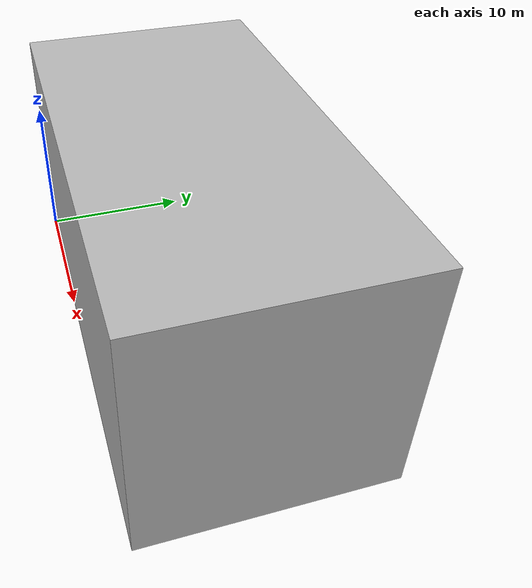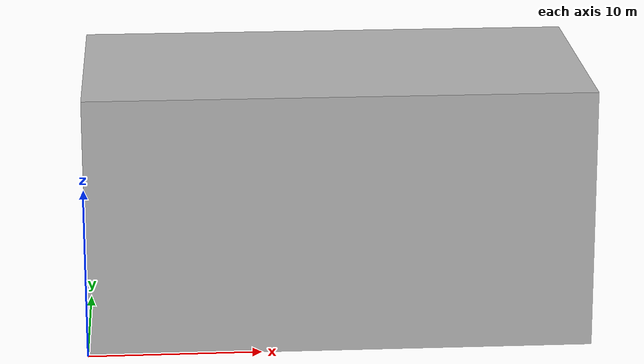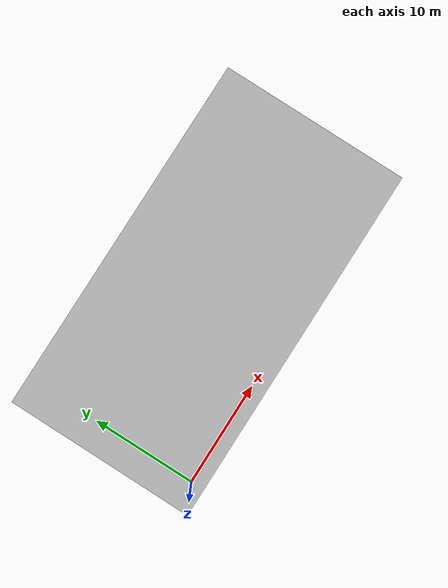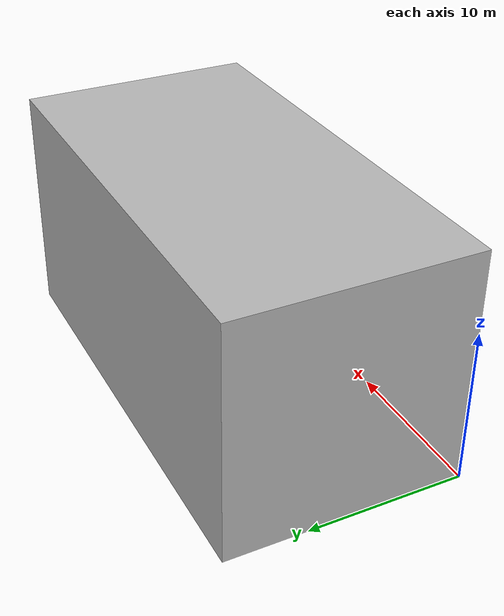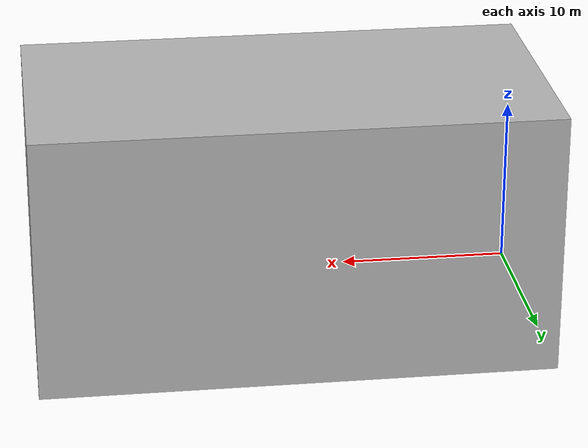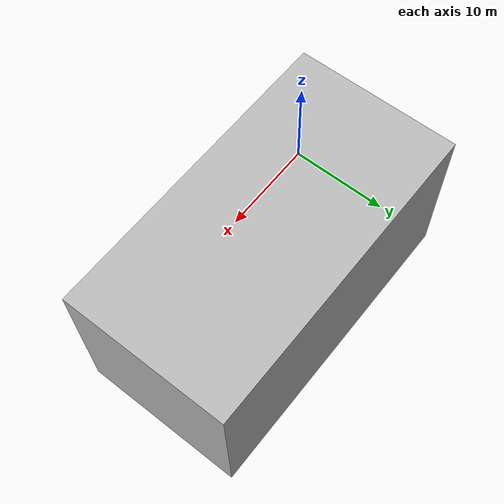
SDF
<sdf version="1.7">
 <world name="default">
  <physics name="default_physics" default="0" type="ode">
   <max_step_size>0.001</max_step_size>
   <real_time_factor>1</real_time_factor>
   <real_time_update_rate>1000</real_time_update_rate>
  </physics>
  <scene><ambient>0.4 0.4 0.4 1</ambient><background>0.7 0.7 0.7 1</background><shadows>1</shadows></scene>
  <spherical_coordinates>
   <surface_model>EARTH_WGS84</surface_model>
   <latitude_deg>0</latitude_deg>
   <longitude_deg>0</longitude_deg>
   <elevation>0</elevation>
   <heading_deg>0</heading_deg>
  </spherical_coordinates>
  <gravity>0 0 -9.81</gravity>
  <magnetic_field>0 0 0</magnetic_field>
  <atmosphere type="adiabatic"/>
  <model name="map">
   <static>1</static>
   <link name="link">
    <collision name="collision">
     <geometry><mesh><uri>model://RMUC2024_world/meshes/RMUC_2024.stl</uri><scale>1 1 1</scale></mesh></geometry>
     <surface><friction><ode><mu>100</mu><mu2>50</mu2></ode></friction></surface>
    </collision>
    <visual name="visual">
     <geometry><mesh><uri>model://RMUC2024_world/meshes/RMUC_2024.stl</uri><scale>1 1 1</scale></mesh></geometry>
    </visual>
   </link>
  </model>
  <light name="global_light1" type="directional">
   <pose>14.5 7.5 5 0 -0 0</pose>
   <diffuse>0.5 0.5 0.5 1</diffuse>
   <specular>0.1 0.1 0.1 1</specular>
   <direction>0.1 0.1 -0.9</direction>
   <attenuation>
    <range>20</range>
    <constant>0.5</constant>
    <linear>0.01</linear>
    <quadratic>0.001</quadratic>
   </attenuation>
   <spot><inner_angle>0</inner_angle><outer_angle>0</outer_angle><falloff>0</falloff></spot>
  </light>
  <light name="global_light2" type="directional">
   <pose>14.5 7.5 5 0 -0 0</pose>
   <diffuse>0.5 0.5 0.5 1</diffuse>
   <specular>0.1 0.1 0.1 1</specular>
   <direction>0.1 0.1 -0.9</direction>
   <attenuation>
    <range>20</range>
    <constant>0.5</constant>
    <linear>0.01</linear>
    <quadratic>0.001</quadratic>
   </attenuation>
   <spot><inner_angle>0</inner_angle><outer_angle>0</outer_angle><falloff>0</falloff></spot>
  </light>
  <light name="center_direct_light" type="spot">
   <pose>15.1654 7.58216 1 0 -0 0</pose>
   <diffuse>0.5 0.5 0.5 1</diffuse>
   <specular>0.1 0.1 0.1 1</specular>
   <direction>0 0 -1</direction>
   <attenuation>
    <range>20</range>
    <constant>0.5</constant>
    <linear>0.01</linear>
    <quadratic>0.001</quadratic>
   </attenuation>
   <cast_shadows>0</cast_shadows>
   <spot><inner_angle>0.6</inner_angle><outer_angle>1</outer_angle><falloff>1</falloff></spot>
  </light>
 </world>
</sdf>
